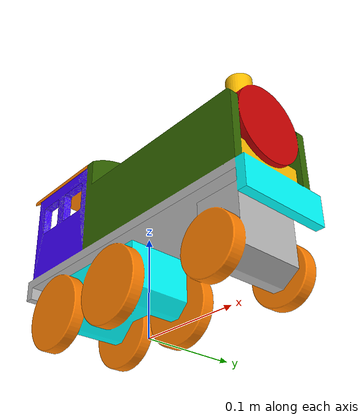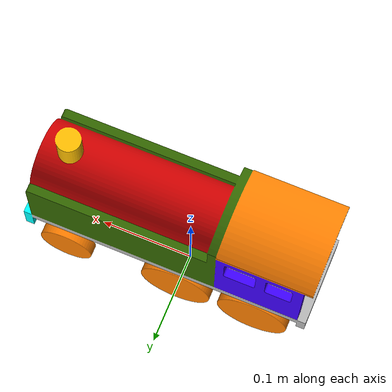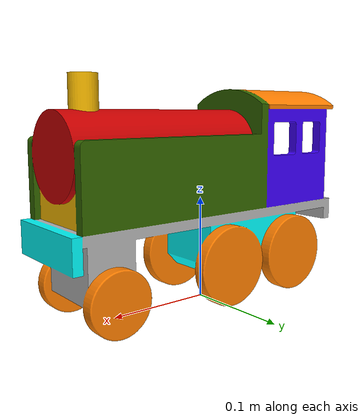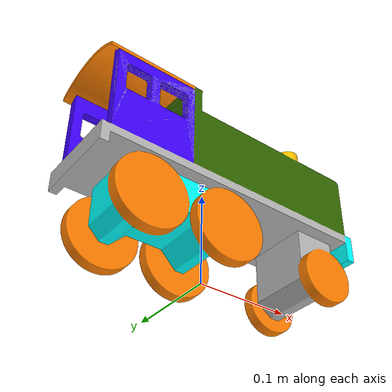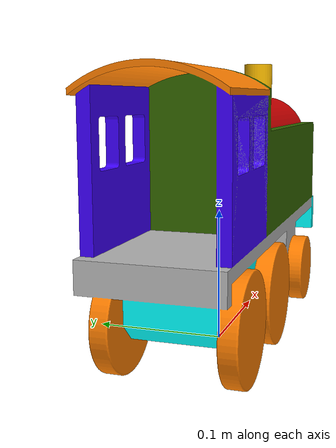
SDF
<?xml version='1.0'?>
<sdf version='1.4'>
  <model name="train">
    <static>false</static>
    <link name="link">
      <collision name='collision'>
        <pose>0 0 1 0 0 0</pose>
        <geometry>
	  <box>
		  <size>
			  1 1 1
		  </size>
	  </box>
        </geometry>
      </collision>

      <visual name='visual'>
        <pose>0 0 0 0 0 0</pose>
        <geometry>
          <mesh>
            <uri>model://train/meshes/model.dae</uri>
            <scale>1 1 1</scale>
          </mesh>
        </geometry>
      </visual>
    </link>

  </model>
</sdf>
